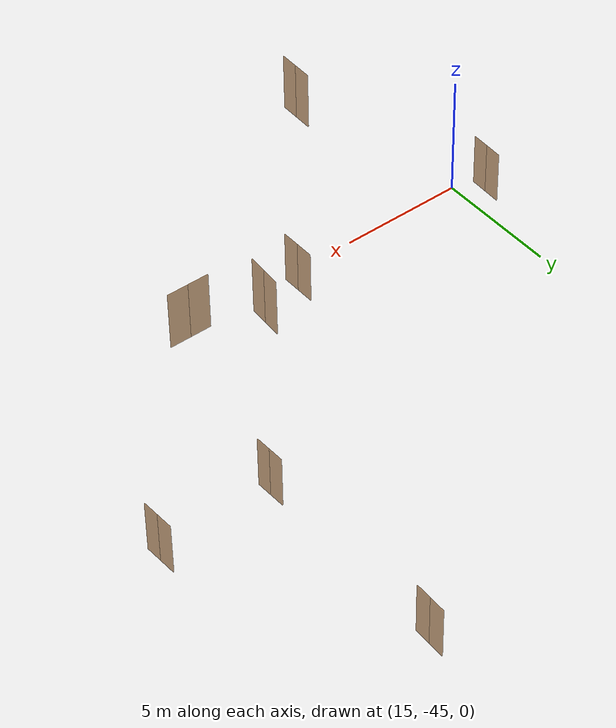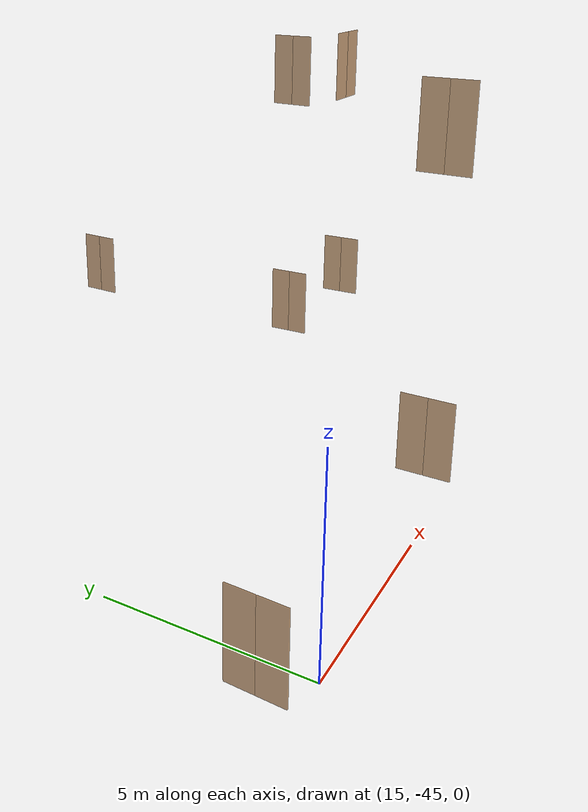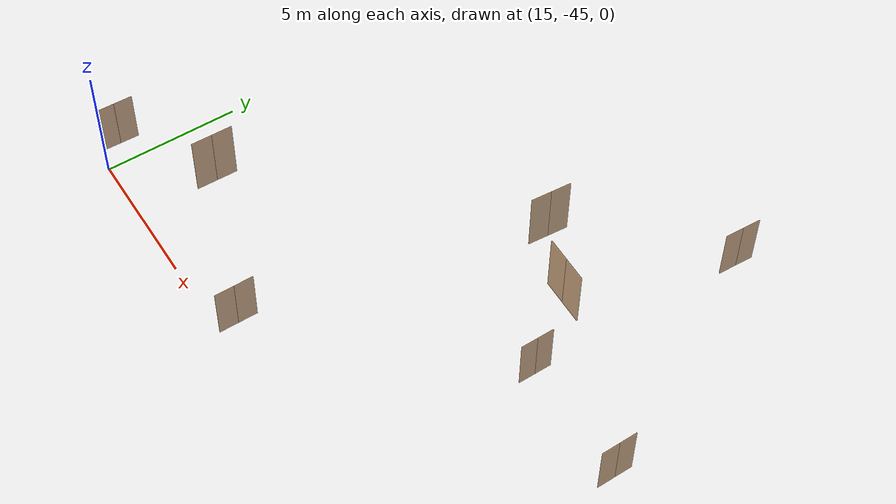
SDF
<sdf version="1.7">
 <world name="sim_world">
  <model name="TD1023CP2">
   <pose>14.151884414716331 -44.090000320503776 0.0 0 0 1.5401873563583324</pose>
   <link name="right">
    <pose>0.3461613428119867 0 1.11 0 0 0</pose>
    <visual name="right_visual">
     <geometry><box><size>0.6823226856239734 0.03 2.2</size></box></geometry>
     <material>
      <ambient>0.5 0.25 0 0.6</ambient>
      <diffuse>0.5 0.25 0 0.6</diffuse>
      <pbr><metal><metalness>0.0</metalness></metal></pbr>
     </material>
    </visual>
    <collision name="right_collision">
     <geometry><box><size>0.6823226856239734 0.03 2.2</size></box></geometry>
     <surface><contact><collide_bitmask>0x02</collide_bitmask></contact></surface>
    </collision>
    <inertial>
     <mass>50.0</mass>
     <inertia><ixx>20.17041666666667</ixx><iyy>22.106517697154636</iyy><izz>1.9436010304879652</izz></inertia>
    </inertial>
   </link>
   <joint name="right_joint" type="revolute">
    <parent>world</parent>
    <child>right</child>
    <axis><xyz>0 0 -1</xyz><limit><lower>0</lower><upper>1.57</upper></limit></axis>
    <pose>0.3461613428119867 0 0 0 0 0</pose>
   </joint>
   <link name="left">
    <pose>-0.3461613428119867 0 1.11 0 0 0</pose>
    <visual name="left_visual">
     <geometry><box><size>0.6823226856239734 0.03 2.2</size></box></geometry>
     <material>
      <ambient>0.5 0.25 0 0.6</ambient>
      <diffuse>0.5 0.25 0 0.6</diffuse>
      <pbr><metal><metalness>0.0</metalness></metal></pbr>
     </material>
    </visual>
    <collision name="left_collision">
     <geometry><box><size>0.6823226856239734 0.03 2.2</size></box></geometry>
     <surface><contact><collide_bitmask>0x02</collide_bitmask></contact></surface>
    </collision>
    <inertial>
     <mass>50.0</mass>
     <inertia><ixx>20.17041666666667</ixx><iyy>22.106517697154636</iyy><izz>1.9436010304879652</izz></inertia>
    </inertial>
   </link>
   <joint name="left_joint" type="revolute">
    <parent>world</parent>
    <child>left</child>
    <axis><xyz>0 0 -1</xyz><limit><lower>-1.57</lower><upper>0</upper></limit></axis>
    <pose>-0.3461613428119867 0 0 0 0 0</pose>
   </joint>
   <plugin name="register_component" filename="libregister_component.so">
    <component name="Door">
     <v_max_door>0.5</v_max_door>
     <a_max_door>0.3</a_max_door>
     <a_nom_door>0.15</a_nom_door>
     <dx_min_door>0.01</dx_min_door>
     <f_max_door>500.0</f_max_door>
     <ros_interface>true</ros_interface>
     <door name="TD1023CP2" type="DoubleSwingDoor" left_joint_name="left_joint" right_joint_name="right_joint"/>
    </component>
   </plugin>
  </model>
  <model name="TD1018AA">
   <pose>29.951908290406482 -36.82259198297031 0.0 0 0 -1.5430325593746388</pose>
   <link name="right">
    <pose>0.31754923010777264 0 1.11 0 0 0</pose>
    <visual name="right_visual">
     <geometry><box><size>0.6250984602155453 0.03 2.2</size></box></geometry>
     <material>
      <ambient>0.5 0.25 0 0.6</ambient>
      <diffuse>0.5 0.25 0 0.6</diffuse>
      <pbr><metal><metalness>0.0</metalness></metal></pbr>
     </material>
    </visual>
    <collision name="right_collision">
     <geometry><box><size>0.6250984602155453 0.03 2.2</size></box></geometry>
     <surface><contact><collide_bitmask>0x02</collide_bitmask></contact></surface>
    </collision>
    <inertial>
     <mass>50.0</mass>
     <inertia><ixx>20.17041666666667</ixx><iyy>21.79478368734936</iyy><izz>1.6318670206826902</izz></inertia>
    </inertial>
   </link>
   <joint name="right_joint" type="revolute">
    <parent>world</parent>
    <child>right</child>
    <axis><xyz>0 0 -1</xyz><limit><lower>0</lower><upper>1.57</upper></limit></axis>
    <pose>0.31754923010777264 0 0 0 0 0</pose>
   </joint>
   <link name="left">
    <pose>-0.31754923010777264 0 1.11 0 0 0</pose>
    <visual name="left_visual">
     <geometry><box><size>0.6250984602155453 0.03 2.2</size></box></geometry>
     <material>
      <ambient>0.5 0.25 0 0.6</ambient>
      <diffuse>0.5 0.25 0 0.6</diffuse>
      <pbr><metal><metalness>0.0</metalness></metal></pbr>
     </material>
    </visual>
    <collision name="left_collision">
     <geometry><box><size>0.6250984602155453 0.03 2.2</size></box></geometry>
     <surface><contact><collide_bitmask>0x02</collide_bitmask></contact></surface>
    </collision>
    <inertial>
     <mass>50.0</mass>
     <inertia><ixx>20.17041666666667</ixx><iyy>21.79478368734936</iyy><izz>1.6318670206826902</izz></inertia>
    </inertial>
   </link>
   <joint name="left_joint" type="revolute">
    <parent>world</parent>
    <child>left</child>
    <axis><xyz>0 0 -1</xyz><limit><lower>-1.57</lower><upper>0</upper></limit></axis>
    <pose>-0.31754923010777264 0 0 0 0 0</pose>
   </joint>
   <plugin name="register_component" filename="libregister_component.so">
    <component name="Door">
     <v_max_door>0.5</v_max_door>
     <a_max_door>0.3</a_max_door>
     <a_nom_door>0.15</a_nom_door>
     <dx_min_door>0.01</dx_min_door>
     <f_max_door>500.0</f_max_door>
     <ros_interface>true</ros_interface>
     <door name="TD1018AA" type="DoubleSwingDoor" left_joint_name="left_joint" right_joint_name="right_joint"/>
    </component>
   </plugin>
  </model>
  <model name="TD1015AA">
   <pose>34.52737757915742 -36.775884167848716 0.0 0 0 1.6088766030403268</pose>
   <link name="right">
    <pose>0.3404664622116848 0 1.11 0 0 0</pose>
    <visual name="right_visual">
     <geometry><box><size>0.6709329244233696 0.03 2.2</size></box></geometry>
     <material>
      <ambient>0.5 0.25 0 0.6</ambient>
      <diffuse>0.5 0.25 0 0.6</diffuse>
      <pbr><metal><metalness>0.0</metalness></metal></pbr>
     </material>
    </visual>
    <collision name="right_collision">
     <geometry><box><size>0.6709329244233696 0.03 2.2</size></box></geometry>
     <surface><contact><collide_bitmask>0x02</collide_bitmask></contact></surface>
    </collision>
    <inertial>
     <mass>50.0</mass>
     <inertia><ixx>20.17041666666667</ixx><iyy>22.042295787813735</iyy><izz>1.8793791211470627</izz></inertia>
    </inertial>
   </link>
   <joint name="right_joint" type="revolute">
    <parent>world</parent>
    <child>right</child>
    <axis><xyz>0 0 -1</xyz><limit><lower>0</lower><upper>1.57</upper></limit></axis>
    <pose>0.3404664622116848 0 0 0 0 0</pose>
   </joint>
   <link name="left">
    <pose>-0.3404664622116848 0 1.11 0 0 0</pose>
    <visual name="left_visual">
     <geometry><box><size>0.6709329244233696 0.03 2.2</size></box></geometry>
     <material>
      <ambient>0.5 0.25 0 0.6</ambient>
      <diffuse>0.5 0.25 0 0.6</diffuse>
      <pbr><metal><metalness>0.0</metalness></metal></pbr>
     </material>
    </visual>
    <collision name="left_collision">
     <geometry><box><size>0.6709329244233696 0.03 2.2</size></box></geometry>
     <surface><contact><collide_bitmask>0x02</collide_bitmask></contact></surface>
    </collision>
    <inertial>
     <mass>50.0</mass>
     <inertia><ixx>20.17041666666667</ixx><iyy>22.042295787813735</iyy><izz>1.8793791211470627</izz></inertia>
    </inertial>
   </link>
   <joint name="left_joint" type="revolute">
    <parent>world</parent>
    <child>left</child>
    <axis><xyz>0 0 -1</xyz><limit><lower>-1.57</lower><upper>0</upper></limit></axis>
    <pose>-0.3404664622116848 0 0 0 0 0</pose>
   </joint>
   <plugin name="register_component" filename="libregister_component.so">
    <component name="Door">
     <v_max_door>0.5</v_max_door>
     <a_max_door>0.3</a_max_door>
     <a_nom_door>0.15</a_nom_door>
     <dx_min_door>0.01</dx_min_door>
     <f_max_door>500.0</f_max_door>
     <ros_interface>true</ros_interface>
     <door name="TD1015AA" type="DoubleSwingDoor" left_joint_name="left_joint" right_joint_name="right_joint"/>
    </component>
   </plugin>
  </model>
  <model name="TD1017AA">
   <pose>29.95216640663613 -28.57745058997337 0.0 0 0 -1.597461133918594</pose>
   <link name="right">
    <pose>0.3354739616892271 0 1.11 0 0 0</pose>
    <visual name="right_visual">
     <geometry><box><size>0.6609479233784542 0.03 2.2</size></box></geometry>
     <material>
      <ambient>0.5 0.25 0 0.6</ambient>
      <diffuse>0.5 0.25 0 0.6</diffuse>
      <pbr><metal><metalness>0.0</metalness></metal></pbr>
     </material>
    </visual>
    <collision name="right_collision">
     <geometry><box><size>0.6609479233784542 0.03 2.2</size></box></geometry>
     <surface><contact><collide_bitmask>0x02</collide_bitmask></contact></surface>
    </collision>
    <inertial>
     <mass>50.0</mass>
     <inertia><ixx>20.17041666666667</ixx><iyy>21.986883989242884</iyy><izz>1.8239673225762125</izz></inertia>
    </inertial>
   </link>
   <joint name="right_joint" type="revolute">
    <parent>world</parent>
    <child>right</child>
    <axis><xyz>0 0 -1</xyz><limit><lower>0</lower><upper>1.57</upper></limit></axis>
    <pose>0.3354739616892271 0 0 0 0 0</pose>
   </joint>
   <link name="left">
    <pose>-0.3354739616892271 0 1.11 0 0 0</pose>
    <visual name="left_visual">
     <geometry><box><size>0.6609479233784542 0.03 2.2</size></box></geometry>
     <material>
      <ambient>0.5 0.25 0 0.6</ambient>
      <diffuse>0.5 0.25 0 0.6</diffuse>
      <pbr><metal><metalness>0.0</metalness></metal></pbr>
     </material>
    </visual>
    <collision name="left_collision">
     <geometry><box><size>0.6609479233784542 0.03 2.2</size></box></geometry>
     <surface><contact><collide_bitmask>0x02</collide_bitmask></contact></surface>
    </collision>
    <inertial>
     <mass>50.0</mass>
     <inertia><ixx>20.17041666666667</ixx><iyy>21.986883989242884</iyy><izz>1.8239673225762125</izz></inertia>
    </inertial>
   </link>
   <joint name="left_joint" type="revolute">
    <parent>world</parent>
    <child>left</child>
    <axis><xyz>0 0 -1</xyz><limit><lower>-1.57</lower><upper>0</upper></limit></axis>
    <pose>-0.3354739616892271 0 0 0 0 0</pose>
   </joint>
   <plugin name="register_component" filename="libregister_component.so">
    <component name="Door">
     <v_max_door>0.5</v_max_door>
     <a_max_door>0.3</a_max_door>
     <a_nom_door>0.15</a_nom_door>
     <dx_min_door>0.01</dx_min_door>
     <f_max_door>500.0</f_max_door>
     <ros_interface>true</ros_interface>
     <door name="TD1017AA" type="DoubleSwingDoor" left_joint_name="left_joint" right_joint_name="right_joint"/>
    </component>
   </plugin>
  </model>
  <model name="TD1005CP2">
   <pose>23.0216221936834 -44.19776945760438 0.0 0 0 1.5793460133227735</pose>
   <link name="right">
    <pose>0.36556766552237047 0 1.11 0 0 0</pose>
    <visual name="right_visual">
     <geometry><box><size>0.7211353310447409 0.03 2.2</size></box></geometry>
     <material>
      <ambient>0.5 0.25 0 0.6</ambient>
      <diffuse>0.5 0.25 0 0.6</diffuse>
      <pbr><metal><metalness>0.0</metalness></metal></pbr>
     </material>
    </visual>
    <collision name="right_collision">
     <geometry><box><size>0.7211353310447409 0.03 2.2</size></box></geometry>
     <surface><contact><collide_bitmask>0x02</collide_bitmask></contact></surface>
    </collision>
    <inertial>
     <mass>50.0</mass>
     <inertia><ixx>20.17041666666667</ixx><iyy>22.33348402367087</iyy><izz>2.1705673570042006</izz></inertia>
    </inertial>
   </link>
   <joint name="right_joint" type="revolute">
    <parent>world</parent>
    <child>right</child>
    <axis><xyz>0 0 -1</xyz><limit><lower>0</lower><upper>1.57</upper></limit></axis>
    <pose>0.36556766552237047 0 0 0 0 0</pose>
   </joint>
   <link name="left">
    <pose>-0.36556766552237047 0 1.11 0 0 0</pose>
    <visual name="left_visual">
     <geometry><box><size>0.7211353310447409 0.03 2.2</size></box></geometry>
     <material>
      <ambient>0.5 0.25 0 0.6</ambient>
      <diffuse>0.5 0.25 0 0.6</diffuse>
      <pbr><metal><metalness>0.0</metalness></metal></pbr>
     </material>
    </visual>
    <collision name="left_collision">
     <geometry><box><size>0.7211353310447409 0.03 2.2</size></box></geometry>
     <surface><contact><collide_bitmask>0x02</collide_bitmask></contact></surface>
    </collision>
    <inertial>
     <mass>50.0</mass>
     <inertia><ixx>20.17041666666667</ixx><iyy>22.33348402367087</iyy><izz>2.1705673570042006</izz></inertia>
    </inertial>
   </link>
   <joint name="left_joint" type="revolute">
    <parent>world</parent>
    <child>left</child>
    <axis><xyz>0 0 -1</xyz><limit><lower>-1.57</lower><upper>0</upper></limit></axis>
    <pose>-0.36556766552237047 0 0 0 0 0</pose>
   </joint>
   <plugin name="register_component" filename="libregister_component.so">
    <component name="Door">
     <v_max_door>0.5</v_max_door>
     <a_max_door>0.3</a_max_door>
     <a_nom_door>0.15</a_nom_door>
     <dx_min_door>0.01</dx_min_door>
     <f_max_door>500.0</f_max_door>
     <ros_interface>true</ros_interface>
     <door name="TD1005CP2" type="DoubleSwingDoor" left_joint_name="left_joint" right_joint_name="right_joint"/>
    </component>
   </plugin>
  </model>
  <model name="TD11062">
   <pose>29.940759694369184 -36.78311016332414 8.0 0 0 -1.6333948249818107</pose>
   <link name="right">
    <pose>0.3297879047775497 0 1.11 0 0 0</pose>
    <visual name="right_visual">
     <geometry><box><size>0.6495758095550994 0.03 2.2</size></box></geometry>
     <material>
      <ambient>0.5 0.25 0 0.6</ambient>
      <diffuse>0.5 0.25 0 0.6</diffuse>
      <pbr><metal><metalness>0.0</metalness></metal></pbr>
     </material>
    </visual>
    <collision name="right_collision">
     <geometry><box><size>0.6495758095550994 0.03 2.2</size></box></geometry>
     <surface><contact><collide_bitmask>0x02</collide_bitmask></contact></surface>
    </collision>
    <inertial>
     <mass>50.0</mass>
     <inertia><ixx>20.17041666666667</ixx><iyy>21.92478638482985</iyy><izz>1.7618697181631786</izz></inertia>
    </inertial>
   </link>
   <joint name="right_joint" type="revolute">
    <parent>world</parent>
    <child>right</child>
    <axis><xyz>0 0 -1</xyz><limit><lower>0</lower><upper>1.57</upper></limit></axis>
    <pose>0.3297879047775497 0 0 0 0 0</pose>
   </joint>
   <link name="left">
    <pose>-0.3297879047775497 0 1.11 0 0 0</pose>
    <visual name="left_visual">
     <geometry><box><size>0.6495758095550994 0.03 2.2</size></box></geometry>
     <material>
      <ambient>0.5 0.25 0 0.6</ambient>
      <diffuse>0.5 0.25 0 0.6</diffuse>
      <pbr><metal><metalness>0.0</metalness></metal></pbr>
     </material>
    </visual>
    <collision name="left_collision">
     <geometry><box><size>0.6495758095550994 0.03 2.2</size></box></geometry>
     <surface><contact><collide_bitmask>0x02</collide_bitmask></contact></surface>
    </collision>
    <inertial>
     <mass>50.0</mass>
     <inertia><ixx>20.17041666666667</ixx><iyy>21.92478638482985</iyy><izz>1.7618697181631786</izz></inertia>
    </inertial>
   </link>
   <joint name="left_joint" type="revolute">
    <parent>world</parent>
    <child>left</child>
    <axis><xyz>0 0 -1</xyz><limit><lower>-1.57</lower><upper>0</upper></limit></axis>
    <pose>-0.3297879047775497 0 0 0 0 0</pose>
   </joint>
   <plugin name="register_component" filename="libregister_component.so">
    <component name="Door">
     <v_max_door>0.5</v_max_door>
     <a_max_door>0.3</a_max_door>
     <a_nom_door>0.15</a_nom_door>
     <dx_min_door>0.01</dx_min_door>
     <f_max_door>500.0</f_max_door>
     <ros_interface>true</ros_interface>
     <door name="TD11062" type="DoubleSwingDoor" left_joint_name="left_joint" right_joint_name="right_joint"/>
    </component>
   </plugin>
  </model>
  <model name="TD118CP1">
   <pose>32.148312796529765 -37.736550331229736 8.0 0 0 3.1371944600582897</pose>
   <link name="right">
    <pose>0.38617783216979074 0 1.11 0 0 0</pose>
    <visual name="right_visual">
     <geometry><box><size>0.7623556643395815 0.03 2.2</size></box></geometry>
     <material>
      <ambient>0.5 0.25 0 0.6</ambient>
      <diffuse>0.5 0.25 0 0.6</diffuse>
      <pbr><metal><metalness>0.0</metalness></metal></pbr>
     </material>
    </visual>
    <collision name="right_collision">
     <geometry><box><size>0.7623556643395815 0.03 2.2</size></box></geometry>
     <surface><contact><collide_bitmask>0x02</collide_bitmask></contact></surface>
    </collision>
    <inertial>
     <mass>50.0</mass>
     <inertia><ixx>20.17041666666667</ixx><iyy>22.588275662294357</iyy><izz>2.425358995627686</izz></inertia>
    </inertial>
   </link>
   <joint name="right_joint" type="revolute">
    <parent>world</parent>
    <child>right</child>
    <axis><xyz>0 0 -1</xyz><limit><lower>0</lower><upper>1.57</upper></limit></axis>
    <pose>0.38617783216979074 0 0 0 0 0</pose>
   </joint>
   <link name="left">
    <pose>-0.38617783216979074 0 1.11 0 0 0</pose>
    <visual name="left_visual">
     <geometry><box><size>0.7623556643395815 0.03 2.2</size></box></geometry>
     <material>
      <ambient>0.5 0.25 0 0.6</ambient>
      <diffuse>0.5 0.25 0 0.6</diffuse>
      <pbr><metal><metalness>0.0</metalness></metal></pbr>
     </material>
    </visual>
    <collision name="left_collision">
     <geometry><box><size>0.7623556643395815 0.03 2.2</size></box></geometry>
     <surface><contact><collide_bitmask>0x02</collide_bitmask></contact></surface>
    </collision>
    <inertial>
     <mass>50.0</mass>
     <inertia><ixx>20.17041666666667</ixx><iyy>22.588275662294357</iyy><izz>2.425358995627686</izz></inertia>
    </inertial>
   </link>
   <joint name="left_joint" type="revolute">
    <parent>world</parent>
    <child>left</child>
    <axis><xyz>0 0 -1</xyz><limit><lower>-1.57</lower><upper>0</upper></limit></axis>
    <pose>-0.38617783216979074 0 0 0 0 0</pose>
   </joint>
   <plugin name="register_component" filename="libregister_component.so">
    <component name="Door">
     <v_max_door>0.5</v_max_door>
     <a_max_door>0.3</a_max_door>
     <a_nom_door>0.15</a_nom_door>
     <dx_min_door>0.01</dx_min_door>
     <f_max_door>500.0</f_max_door>
     <ros_interface>true</ros_interface>
     <door name="TD118CP1" type="DoubleSwingDoor" left_joint_name="left_joint" right_joint_name="right_joint"/>
    </component>
   </plugin>
  </model>
  <model name="TD1114CP1">
   <pose>22.9126582820327 -44.21086026507539 8.0 0 0 1.5537483819523819</pose>
   <link name="right">
    <pose>0.33618010783248176 0 1.11 0 0 0</pose>
    <visual name="right_visual">
     <geometry><box><size>0.6623602156649635 0.03 2.2</size></box></geometry>
     <material>
      <ambient>0.5 0.25 0 0.6</ambient>
      <diffuse>0.5 0.25 0 0.6</diffuse>
      <pbr><metal><metalness>0.0</metalness></metal></pbr>
     </material>
    </visual>
    <collision name="right_collision">
     <geometry><box><size>0.6623602156649635 0.03 2.2</size></box></geometry>
     <surface><contact><collide_bitmask>0x02</collide_bitmask></contact></surface>
    </collision>
    <inertial>
     <mass>50.0</mass>
     <inertia><ixx>20.17041666666667</ixx><iyy>21.99467106373224</iyy><izz>1.8317543970655707</izz></inertia>
    </inertial>
   </link>
   <joint name="right_joint" type="revolute">
    <parent>world</parent>
    <child>right</child>
    <axis><xyz>0 0 -1</xyz><limit><lower>0</lower><upper>1.57</upper></limit></axis>
    <pose>0.33618010783248176 0 0 0 0 0</pose>
   </joint>
   <link name="left">
    <pose>-0.33618010783248176 0 1.11 0 0 0</pose>
    <visual name="left_visual">
     <geometry><box><size>0.6623602156649635 0.03 2.2</size></box></geometry>
     <material>
      <ambient>0.5 0.25 0 0.6</ambient>
      <diffuse>0.5 0.25 0 0.6</diffuse>
      <pbr><metal><metalness>0.0</metalness></metal></pbr>
     </material>
    </visual>
    <collision name="left_collision">
     <geometry><box><size>0.6623602156649635 0.03 2.2</size></box></geometry>
     <surface><contact><collide_bitmask>0x02</collide_bitmask></contact></surface>
    </collision>
    <inertial>
     <mass>50.0</mass>
     <inertia><ixx>20.17041666666667</ixx><iyy>21.99467106373224</iyy><izz>1.8317543970655707</izz></inertia>
    </inertial>
   </link>
   <joint name="left_joint" type="revolute">
    <parent>world</parent>
    <child>left</child>
    <axis><xyz>0 0 -1</xyz><limit><lower>-1.57</lower><upper>0</upper></limit></axis>
    <pose>-0.33618010783248176 0 0 0 0 0</pose>
   </joint>
   <plugin name="register_component" filename="libregister_component.so">
    <component name="Door">
     <v_max_door>0.5</v_max_door>
     <a_max_door>0.3</a_max_door>
     <a_nom_door>0.15</a_nom_door>
     <dx_min_door>0.01</dx_min_door>
     <f_max_door>500.0</f_max_door>
     <ros_interface>true</ros_interface>
     <door name="TD1114CP1" type="DoubleSwingDoor" left_joint_name="left_joint" right_joint_name="right_joint"/>
    </component>
   </plugin>
  </model>
 </world>
</sdf>
